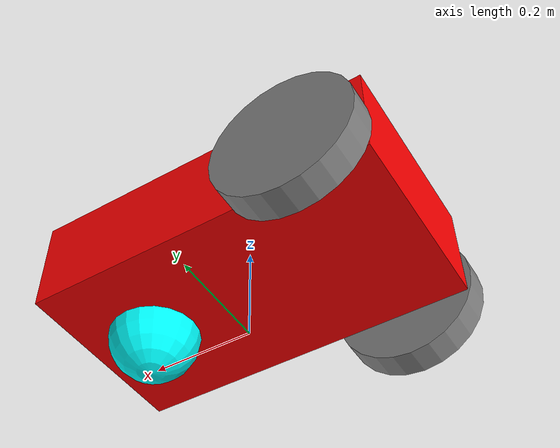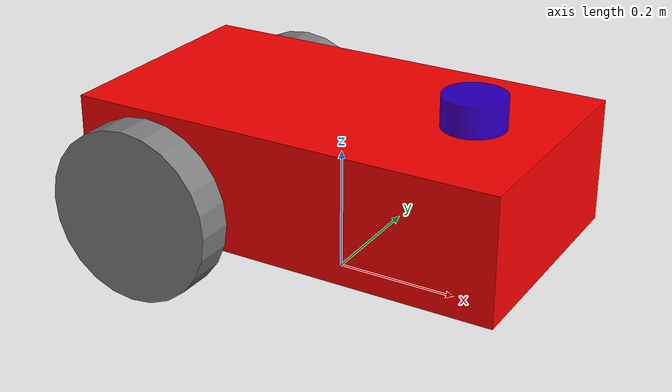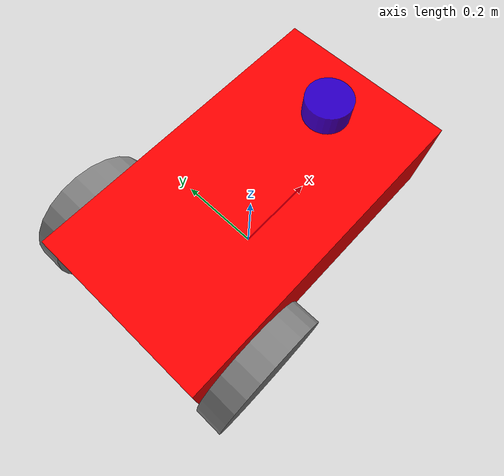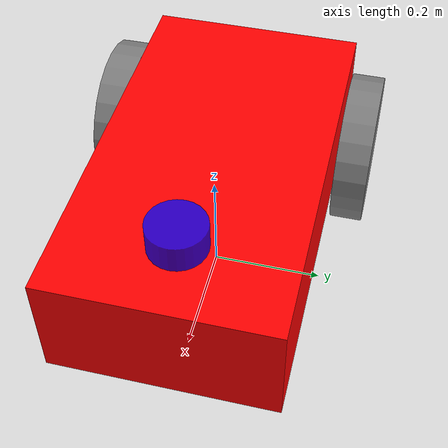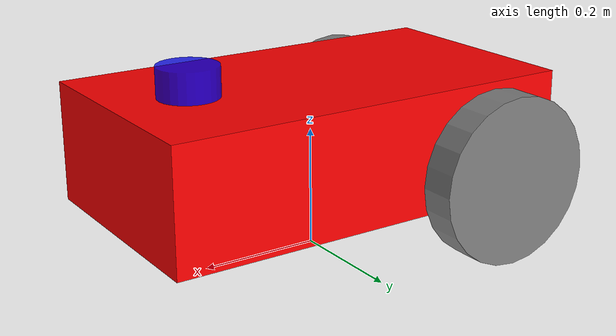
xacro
<?xml version="1.0" ?>
<robot name="ICTE4001Bot" xmlns:xacro="http://ros.org/wiki/xacro">

    <!-- ****************** ROBOT CONSTANTS *******************************  -->

    <!-- Define the size of the robot's main chassis in meters -->
    <xacro:property name="base_width" value="0.39"/>
    <xacro:property name="base_length" value="0.70"/>
    <xacro:property name="base_height" value="0.20"/>

    <!-- Define the shape of the robot's two back wheels in meters -->
    <xacro:property name="wheel_radius" value="0.14"/>
    <xacro:property name="wheel_width" value="0.06"/>
    <!-- Define the gap between the wheel and chassis along y-axis in meters -->
    <xacro:property name="wheel_ygap" value="0.035"/>
    <!-- Position the wheels along the z-axis -->
    <xacro:property name="wheel_zoff" value="0.05"/>
    <!-- Position the wheels along the x-axis -->
    <xacro:property name="wheel_xoff" value="0.221"/>

    <!-- Position the caster wheel along the x-axis -->
    <xacro:property name="caster_xoff" value="0.217"/>

    <!-- Define the shape of the robot's lidar in meters -->
	<xacro:property name="lidar_radius" value="0.05"/>
	<xacro:property name="lidar_height" value="0.05"/>
	<!-- Position the lidar along the z-axis -->
	<xacro:property name="lidar_zoff" value="0.125"/>
	<xacro:property name="lidar_xoff" value="0.221"/>

    <!-- ****************** INERTIAL PROPERTY MACROS ************************  -->

    <!-- Define box intertial property macros  -->
    <xacro:macro name="box_inertia" params="m w h d">
        <inertial>
            <mass value="${m}"/>
            <inertia ixx="${(m/12) * (h*h + w*w)}" ixy="0.0" ixz="0.0" iyy="${(m/12) * (h*h + d*d)}" iyz="0.0" izz="${(m/12) * (w*w + d*d)}"/>
        </inertial>
    </xacro:macro>
    <!-- Define cylinder property macros  -->
    <xacro:macro name="cylinder_inertia" params="m r h roll pitch yaw">
		<inertial>
			<origin xyz="0 0 0" rpy="${roll} ${pitch} ${yaw}" />
			<mass value="${m}"/>
			<inertia ixx="${(m/12) * (3*r*r + h*h)}" ixy = "0" ixz = "0" iyy="${(m/12) * (3*r*r + h*h)}" iyz = "0" izz="${(m/2) * (r*r)}"/>
		</inertial>
	</xacro:macro>
    <!-- Define sphere property macros  -->
    <xacro:macro name="sphere_inertia" params="m r">
        <inertial>
            <mass value="${m}"/>
            <inertia ixx="${(2/5) * m * (r*r)}" ixy="0.0" ixz="0.0" iyy="${(2/5) * m * (r*r)}" iyz="0.0" izz="${(2/5) * m * (r*r)}"/>
        </inertial>
    </xacro:macro>

    <!-- ****************** ROBOT BASE FOOTPRINT ***************************  -->
     <!-- Define the center of the main robot chassis projected on the ground -->
    <link name="base_footprint">
    </link>
    <!-- ****************** BASE LINK DEFINITIONS ************************  -->
    <link name="base_link">
        <visual>
            <geometry>
                <box size="${base_length} ${base_width} ${base_height}"/>
            </geometry>
            <material name="Red">
                <color rgba="1.0 0.0 0.0 1.0"/>
            </material>
        </visual>
        <collision>
            <geometry>
                <box size="${base_length} ${base_width} ${base_height}"/>
            </geometry>
        </collision>
        <xacro:box_inertia m="15.0" w="${base_width}" d="${base_length}" h="${base_height}"/>
    </link>
    <gazebo reference="base_link">
        <material>Gazebo/Red</material>
    </gazebo>

    <joint name="base_joint" type="fixed">
        <parent link="base_footprint"/>
        <child link="base_link"/>
        <origin xyz="0.0 0.0 ${(wheel_radius+wheel_zoff)}" rpy="0 0 0"/>
    </joint>

    <!-- *********************** DRIVE WHEELS ******************************  -->

    <!-- Drive Wheel Macro to Define Two Wheels -->
    <xacro:macro name="wheel" params="prefix x_reflect y_reflect">
        <link name="${prefix}_link">
            <visual>
                <origin xyz="0 0 0" rpy="${pi/2} 0 0"/>
                <geometry>
                    <cylinder radius="${wheel_radius}" length="${wheel_width}"/>
                </geometry>
                <material name="Gray">
                    <color rgba="0.5 0.5 0.5 1.0"/>
                </material>
            </visual>

            <collision>
                <origin xyz="0 0 0" rpy="${pi/2} 0 0"/>
                <geometry>
                    <cylinder radius="${wheel_radius}" length="${wheel_width}"/>
                </geometry>
            </collision>
            <xacro:cylinder_inertia m="0.5" r="${wheel_radius}" h="${wheel_width}" roll = "${pi/2}" pitch = "0.0" yaw = "0.0"/>
        </link>
        <!-- Connect the wheels to the base_link at the appropriate location, and
        define a continuous joint to allow the wheels to freely rotate about
        an axis -->
        <joint name="${prefix}_joint" type="continuous">
			<parent link="base_link"/>
			<child link="${prefix}_link"/>
			<origin xyz="${x_reflect*wheel_xoff} ${y_reflect*(base_width/2+wheel_ygap)} ${-wheel_zoff}" rpy="0 0 0"/>
			<axis xyz="0 1 0"/>
		</joint>

        <gazebo reference="{prefix}_link">
            <mu1>1.0</mu1>
            <mu2>1.0</mu2>
            <kp>1000000.0</kp>
            <kd>100.0</kd>
            <minDepth>0.0001</minDepth>
            <maxVel>1.0</maxVel>
            <material>Gazebo/DarkGrey</material>
		</gazebo>

        <ros2_control name="${prefix}_link_controller" type="system">
            <hardware>
                <plugin>ign_ros2_control/IgnitionSystem</plugin>
            </hardware>
            <joint name="${prefix}_joint">
                <state_interface name="velocity" />
                <state_interface name="position" />
                <command_interface name="velocity" />
            </joint>
        </ros2_control>

    </xacro:macro>

    <xacro:wheel prefix="drivewhl_l" x_reflect="-1" y_reflect="1" />
    <xacro:wheel prefix="drivewhl_r" x_reflect="-1" y_reflect="-1" />

    <!-- *********************** CASTER WHEEL ******************************  -->
    <link name="front_caster">
		<visual>
			<geometry>
				<sphere radius="${(wheel_radius+wheel_zoff-(base_height/2))}"/>
			</geometry>
			<material name="Cyan">
				<color rgba="0 1.0 1.0 1.0"/>
			</material>
		</visual>

		<collision>
			<origin xyz="0 0 0" rpy="0 0 0"/>
			<geometry>
				<sphere radius="${(wheel_radius+wheel_zoff-(base_height/2))}"/>
			</geometry>
		</collision>

		<xacro:sphere_inertia m="0.5" r="${(wheel_radius+wheel_zoff-(base_height/2))}"/>
    </link>

    <gazebo reference="front_caster">
		<mu1>0.01</mu1>
		<mu2>0.01</mu2>
		<material>Gazebo/White</material>
	</gazebo>

    <joint name="caster_joint" type="fixed">
		<parent link="base_link"/>
		<child link="front_caster"/>
		<origin xyz="${caster_xoff} 0.0 ${-(base_height/2)}" rpy="0 0 0"/>
	</joint>

    <!-- *********************** 2D LIDAR ******************************  -->
    <link name="lidar_link">
		<visual>
			<geometry>
				<cylinder radius="${lidar_radius}" length="${lidar_height}"/>
			</geometry>
			<material name="Blue">
					<color rgba="0.0 0.0 1.0 0.8"/>
			</material>
		</visual>
		<collision>
			<geometry>
				<cylinder radius="${lidar_radius}" length="${lidar_height}"/>
			</geometry>
		</collision>
		<xacro:cylinder_inertia m="0.05" r="${lidar_radius}" h="${lidar_height}" roll = "0.0" pitch = "0.0" yaw = "0.0"/>
	</link>

    <joint name="lidar_joint" type="fixed">
		<parent link="base_link"/>
		<child link="lidar_link"/>
		<origin xyz="${lidar_xoff} 0.0 ${lidar_zoff}" rpy="0 0 0"/>
	</joint>

    <gazebo reference="lidar_joint">
        <preserveFixedJoint>true</preserveFixedJoint>
    </gazebo>

    <gazebo reference="lidar_link">
        <sensor name="lidar_sensor" type="gpu_lidar">
            <update_rate>62.0</update_rate>
            <visualize>true</visualize>
            <always_on>1</always_on>
            <ray>
                <scan>
                    <horizontal>
                            <samples>640</samples>
                            <resolution>1.0</resolution>
                            <min_angle>${-pi}</min_angle>
                            <max_angle>${pi - 2*pi/640}</max_angle>
                    </horizontal>
                    <vertical>
                            <samples>1</samples>
                            <resolution>0.01</resolution>
                            <min_angle>0</min_angle>
                            <max_angle>0</max_angle>
                    </vertical>
                </scan>
                <range>
                        <min>0.164</min>
                        <max>12.0</max>
                        <resolution>0.01</resolution>
                </range>
                <noise>
                    <type>gaussian</type>
                    <mean>0.0</mean>
                    <stddev>0.01</stddev>
                </noise>
            </ray>
            <ignition_frame_id>lidar_link</ignition_frame_id>
        </sensor>
    </gazebo>

    <!-- *********************** IMU ******************************  -->
    <link name="imu_link">
        <visual>
            <geometry>
                <box size="0.005 0.005 0.005"/>
            </geometry>
        </visual>
        <collision>
            <geometry>
                <box size="0.005 0.005 0.005"/>
            </geometry>
        </collision>
        <xacro:box_inertia m="0.005" w="0.005" d="0.005" h="0.005"/>
    </link>

    <joint name="imu_joint" type="fixed">
        <parent link="base_link"/>
        <child link="imu_link"/>
        <origin xyz="0 0 0"/>
    </joint>

    <gazebo reference="imu_joint">
        <preserveFixedJoint>true</preserveFixedJoint>
    </gazebo>

    <gazebo reference="imu_link">
        <sensor name="imu_sensor" type="imu">
            <always_on>1</always_on>
            <update_rate>100</update_rate>
            <visualize>true</visualize>
            <imu>
                <angular_velocity>
                    <x>
                        <noise type="gaussian">
                            <mean>0.0</mean>
                            <stddev>2e-4</stddev>
                            <bias_mean>0.0000075</bias_mean>
                            <bias_stddev>0.0000008</bias_stddev>
                        </noise>
                    </x>
                    <y>
                        <noise type="gaussian">
                            <mean>0.0</mean>
                            <stddev>2e-4</stddev>
                            <bias_mean>0.0000075</bias_mean>
                            <bias_stddev>0.0000008</bias_stddev>
                        </noise>
                    </y>
                    <z>
                        <noise type="gaussian">
                            <mean>0.0</mean>
                            <stddev>2e-4</stddev>
                            <bias_mean>0.0000075</bias_mean>
                            <bias_stddev>0.0000008</bias_stddev>
                        </noise>
                    </z>
                </angular_velocity>
                <linear_acceleration>
                    <x>
                        <noise type="gaussian">
                            <mean>0.0</mean>
                            <stddev>1.7e-2</stddev>
                            <bias_mean>0.1</bias_mean>
                            <bias_stddev>0.001</bias_stddev>
                        </noise>
                    </x>
                    <y>
                        <noise type="gaussian">
                            <mean>0.0</mean>
                            <stddev>1.7e-2</stddev>
                            <bias_mean>0.1</bias_mean>
                            <bias_stddev>0.001</bias_stddev>
                        </noise>
                    </y>
                    <z>
                        <noise type="gaussian">
                            <mean>0.0</mean>
                            <stddev>1.7e-2</stddev>
                            <bias_mean>0.1</bias_mean>
                            <bias_stddev>0.001</bias_stddev>
                        </noise>
                    </z>
                </linear_acceleration>
            </imu>
            <ignition_frame_id>imu_link</ignition_frame_id>
        </sensor>
    </gazebo>

    <!-- *********************** PLUGINS ******************************  -->
    <gazebo>
        <plugin filename="ign_ros2_control-system" name="ign_ros2_control::IgnitionROS2ControlPlugin">
            <parameters>$(find diff_drive_robot_gz_sim)/config/mobile_base_control.yaml</parameters>
            <ros>
                    <remapping>/diffdrive_controller/cmd_vel_unstamped:=/cmd_vel</remapping>
            </ros>
        </plugin>

        <plugin filename="libignition-gazebo-sensors-system.so" name="ignition::gazebo::systems::Sensors">
            <render_engine>ogre2</render_engine>
        </plugin>

        <plugin filename="libignition-gazebo-imu-system.so" name="ignition::gazebo::systems::Imu">
        </plugin>
    </gazebo>

</robot>
